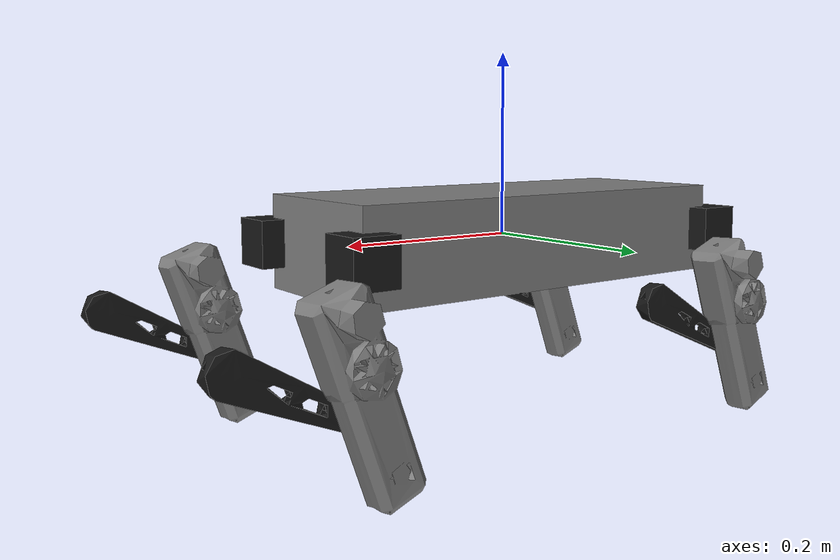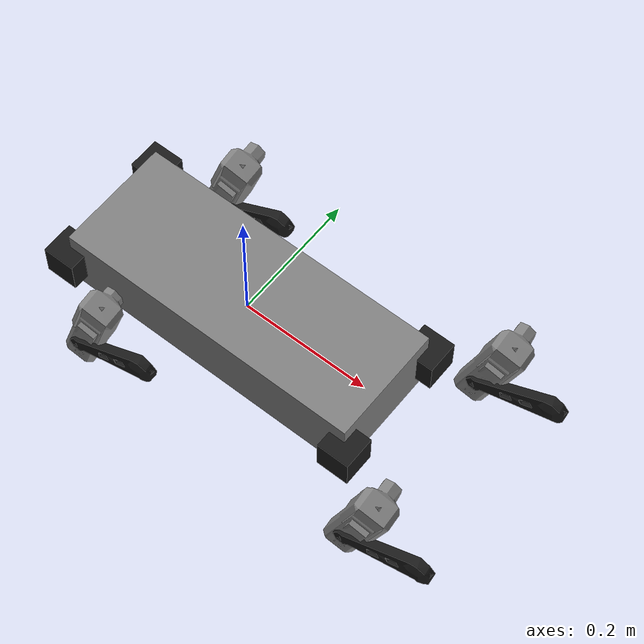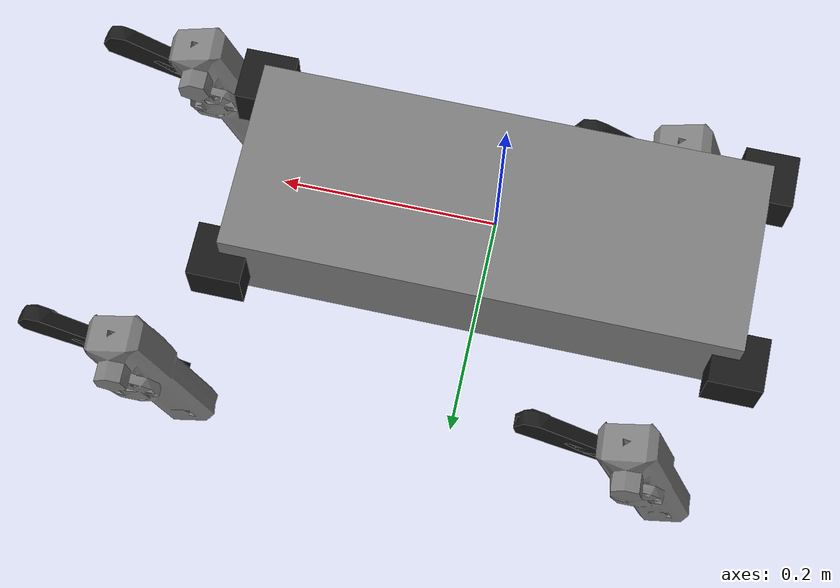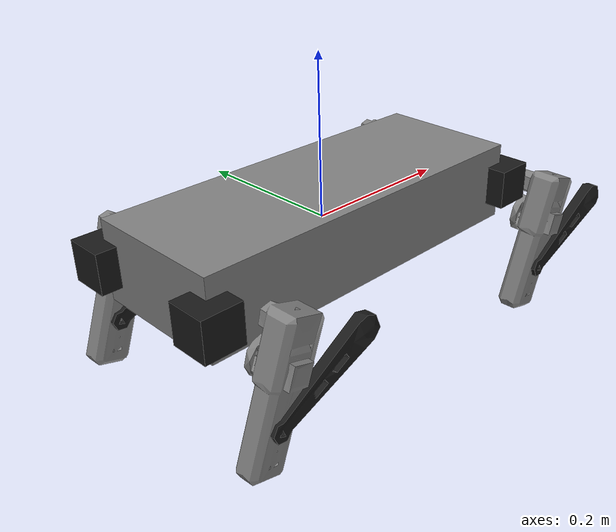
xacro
<?xml version="1.0"?>
<robot xmlns:xacro="http://www.ros.org/wiki/xacro" name="dog">

    <xacro:property name="trunk_l" value="0.475"/>
    <xacro:property name="trunk_w" value="0.18"/>
    <xacro:property name="trunk_h" value="0.1"/>
    <xacro:property name="trunk_m" value="6.0"/>

    <xacro:property name="hip_l" value="0.06"/>
    <xacro:property name="thigh_l" value="0.144"/>
    <xacro:property name="shin_l" value="0.1525"/>
    <xacro:property name="leg_m" value="0.5"/>
    <xacro:property name="leg_r" value="0.02"/>

    <material name="gray"><color rgba="0.5 0.5 0.5 1"/></material>
    <material name="black"><color rgba="0.1 0.1 0.1 1"/></material>

    <xacro:macro name="leg_inertia" params="m">
        <inertial>
            <mass value="${m}"/>
            <inertia ixx="0.005" ixy="0" ixz="0" iyy="0.005" iyz="0" izz="0.005"/>
        </inertial>
    </xacro:macro>

    <link name="base_link"><visual><geometry><box size="0.01 0.01 0.01"/></geometry></visual></link>
    <joint name="base_joint" type="fixed"><parent link="base_link"/><child link="trunk"/></joint>

    <link name="trunk">
        <visual><geometry><box size="${trunk_l} ${trunk_w} ${trunk_h}"/></geometry><material name="gray"/></visual>
        <collision><geometry><box size="${trunk_l} ${trunk_w} ${trunk_h}"/></geometry></collision>
        <inertial>
            <mass value="${trunk_m}"/>
            <origin xyz="-0.05 0 0" rpy="0 0 0"/>
            <inertia ixx="0.05" ixy="0" ixz="0" iyy="0.1" iyz="0" izz="0.1"/>
        </inertial>
    </link>

    <xacro:macro name="dog_leg" params="prefix side_x side_y">

        <joint name="${prefix}_hip_joint" type="revolute">
            <parent link="trunk"/> <child link="${prefix}_hip"/>
            <origin xyz="${side_x * trunk_l/2} ${side_y * trunk_w/2} 0" rpy="0 0 0"/>
            <axis xyz="1 0 0"/>
            <limit lower="-1.0" upper="1.0" effort="20" velocity="20"/>
                    </joint>

        <link name="${prefix}_hip">
            <visual><geometry><box size="0.05 0.05 0.05"/></geometry><material name="black"/></visual>
            <xacro:leg_inertia m="0.2"/>
        </link>

        <joint name="${prefix}_thigh_joint" type="revolute">
            <parent link="${prefix}_hip"/> <child link="${prefix}_thigh"/>
            <origin xyz="0 ${side_y * hip_l} 0" rpy="0 0 0"/>
            <axis xyz="0 1 0"/>
            <limit lower="-1.0" upper="4.0" effort="20" velocity="20"/>
                    </joint>

        <link name="${prefix}_thigh">
            <visual>
                <origin xyz="0 0 0" rpy="0 1.5707963 0"/>
                <geometry><mesh filename="package://dog_description/meshes/leg22.STL" scale="0.001 0.001 0.001"/></geometry>
                <material name="gray"/>
            </visual>
            <!-- No collision on thigh - only foot sphere contacts ground -->
            <xacro:leg_inertia m="${leg_m}"/>
        </link>

        <joint name="${prefix}_shin_joint" type="revolute">
            <parent link="${prefix}_thigh"/> <child link="${prefix}_shin"/>
            <origin xyz="0 0 ${-thigh_l}" rpy="0 0 0"/>
            <axis xyz="0 1 0"/>
            <limit lower="-4.0" upper="-0.1" effort="20" velocity="20"/>
                    </joint>

        <link name="${prefix}_shin">
            <visual>
                <origin xyz="-0.025 0 -0.03" rpy="-1.5707963 0 0"/>
                <geometry><mesh filename="package://dog_description/meshes/leg11.STL" scale="0.001 0.001 0.001"/></geometry>
                <material name="black"/>
            </visual>
            <collision>
                <origin xyz="0 0 ${-shin_l}"/>
                <geometry><sphere radius="0.03"/></geometry>
            </collision>
            <xacro:leg_inertia m="${leg_m}"/>
        </link>

    </xacro:macro>

    <xacro:dog_leg prefix="front_left"  side_x="1"  side_y="1"/>
    <xacro:dog_leg prefix="front_right" side_x="1"  side_y="-1"/>
    <xacro:dog_leg prefix="rear_left"   side_x="-1" side_y="1"/>
    <xacro:dog_leg prefix="rear_right"  side_x="-1" side_y="-1"/>

    <ros2_control name="GazeboSystem" type="system">
        <hardware><plugin>gazebo_ros2_control/GazeboSystem</plugin></hardware>

        <xacro:macro name="ctrl_joint" params="name thigh_val shin_val">
            <joint name="${name}_hip_joint">
                <command_interface name="position"/>
                <state_interface name="velocity"/>
                <state_interface name="position"><param name="initial_value">0.0</param></state_interface>
            </joint>
            <joint name="${name}_thigh_joint">
                <command_interface name="position"/>
                <state_interface name="velocity"/>
                <state_interface name="position"><param name="initial_value">${thigh_val}</param></state_interface>
            </joint>
            <joint name="${name}_shin_joint">
                <command_interface name="position"/>
                <state_interface name="velocity"/>
                <state_interface name="position"><param name="initial_value">${shin_val}</param></state_interface>
            </joint>
        </xacro:macro>

        <xacro:ctrl_joint name="front_left"  thigh_val="0.0" shin_val="-0.1"/>
        <xacro:ctrl_joint name="front_right" thigh_val="0.0" shin_val="-0.1"/>
        <xacro:ctrl_joint name="rear_left"   thigh_val="0.0" shin_val="-0.1"/>
        <xacro:ctrl_joint name="rear_right"  thigh_val="0.0" shin_val="-0.1"/>
    </ros2_control>

    <gazebo>
        <plugin name="gazebo_ros2_control" filename="libgazebo_ros2_control.so">
            <parameters>$(find dog_bringup)/config/controllers.yaml</parameters>
        </plugin>
    </gazebo>

    <!-- Ground truth position monitor - publish base_link pose in world frame -->
    <gazebo>
        <plugin name="p3d_base_controller" filename="libgazebo_ros_p3d.so">
            <ros><remapping>odom:=/ground_truth/state</remapping></ros>
            <frame_name>world</frame_name>
            <body_name>base_link</body_name>
            <update_rate>50</update_rate>
        </plugin>
    </gazebo>

    <gazebo reference="trunk">
        <sensor name="imu_sensor" type="imu">
            <always_on>true</always_on>
            <update_rate>100</update_rate>
            <imu>
                <angular_velocity>
                    <x><noise type="gaussian"><mean>0.0</mean><stddev>0.0002</stddev></noise></x>
                    <y><noise type="gaussian"><mean>0.0</mean><stddev>0.0002</stddev></noise></y>
                    <z><noise type="gaussian"><mean>0.0</mean><stddev>0.0002</stddev></noise></z>
                </angular_velocity>
                <linear_acceleration>
                    <x><noise type="gaussian"><mean>0.0</mean><stddev>0.017</stddev></noise></x>
                    <y><noise type="gaussian"><mean>0.0</mean><stddev>0.017</stddev></noise></y>
                    <z><noise type="gaussian"><mean>0.0</mean><stddev>0.017</stddev></noise></z>
                </linear_acceleration>
            </imu>
            <plugin name="imu_plugin" filename="libgazebo_ros_imu_sensor.so">
                <ros><remapping>~/out:=/imu/data</remapping></ros>
                <initial_orientation_as_reference>false</initial_orientation_as_reference>
                <frame_name>trunk</frame_name>
            </plugin>
        </sensor>
    </gazebo>

</robot>
